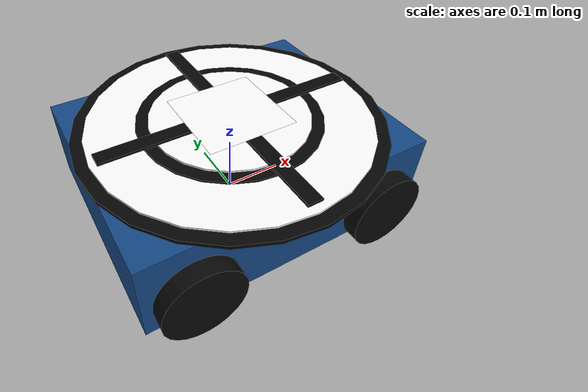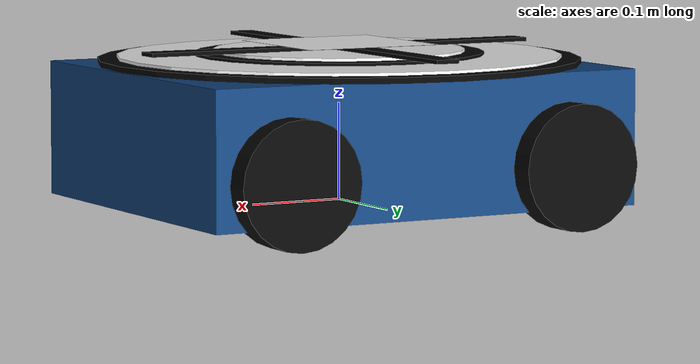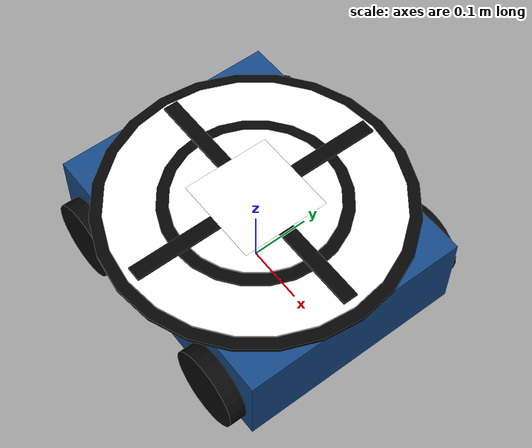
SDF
<?xml version="1.0"?>
<sdf version="1.8">
  <model name="d_task_car">
    <static>false</static>
    <self_collide>false</self_collide>
    <canonical_link>base_link</canonical_link>
    <link name="base_link">
      <inertial>
        <mass>5.0</mass>
        <inertia><ixx>0.08</ixx><iyy>0.10</iyy><izz>0.12</izz><ixy>0</ixy><ixz>0</ixz><iyz>0</iyz></inertia>
      </inertial>
      <collision name="body_collision">
        <pose>0 0 0.07 0 0 0</pose>
        <geometry><box><size>0.48 0.38 0.14</size></box></geometry>
        <surface><friction><ode><mu>0.8</mu><mu2>0.8</mu2></ode></friction></surface>
      </collision>
      <visual name="body_visual">
        <pose>0 0 0.07 0 0 0</pose>
        <geometry><box><size>0.48 0.38 0.14</size></box></geometry>
        <material><ambient>0.04 0.12 0.22 1</ambient><diffuse>0.08 0.28 0.52 1</diffuse></material>
      </visual>

      <!-- 50cm outer circle, 30cm inner circle and cross from the D-task drawing. -->
      <visual name="target_outer_black">
        <pose>0 0 0.145 0 0 0</pose><geometry><cylinder><radius>0.25</radius><length>0.006</length></cylinder></geometry>
        <material><ambient>0.02 0.02 0.02 1</ambient><diffuse>0.02 0.02 0.02 1</diffuse></material>
      </visual>
      <visual name="target_outer_white">
        <pose>0 0 0.149 0 0 0</pose><geometry><cylinder><radius>0.23</radius><length>0.004</length></cylinder></geometry>
        <material><ambient>1 1 1 1</ambient><diffuse>1 1 1 1</diffuse></material>
      </visual>
      <visual name="target_inner_black">
        <pose>0 0 0.152 0 0 0</pose><geometry><cylinder><radius>0.15</radius><length>0.004</length></cylinder></geometry>
        <material><ambient>0.02 0.02 0.02 1</ambient><diffuse>0.02 0.02 0.02 1</diffuse></material>
      </visual>
      <visual name="target_inner_white">
        <pose>0 0 0.155 0 0 0</pose><geometry><cylinder><radius>0.13</radius><length>0.004</length></cylinder></geometry>
        <material><ambient>1 1 1 1</ambient><diffuse>1 1 1 1</diffuse></material>
      </visual>
      <visual name="target_cross_x">
        <pose>0 0 0.159 0 0 0</pose><geometry><box><size>0.44 0.025 0.004</size></box></geometry>
        <material><ambient>0.02 0.02 0.02 1</ambient><diffuse>0.02 0.02 0.02 1</diffuse></material>
      </visual>
      <visual name="target_cross_y">
        <pose>0 0 0.159 0 0 0</pose><geometry><box><size>0.025 0.44 0.004</size></box></geometry>
        <material><ambient>0.02 0.02 0.02 1</ambient><diffuse>0.02 0.02 0.02 1</diffuse></material>
      </visual>

      <!-- Exactly 15x15cm tag36h11 ID 0, centered over the target cross. -->
      <visual name="center_apriltag_id_0">
        <pose>0 0 0.163 0 0 0</pose>
        <geometry><plane><normal>0 0 1</normal><size>0.15 0.15</size></plane></geometry>
        <material>
          <ambient>1 1 1 1</ambient><diffuse>1 1 1 1</diffuse>
          <pbr><metal><albedo_map>model://apriltag_marker/materials/textures/tag36h11_0.png</albedo_map><metalness>0</metalness><roughness>1</roughness></metal></pbr>
        </material>
      </visual>

      <visual name="wheel_fl"><pose>0.16 0.20 0.045 1.5708 0 0</pose><geometry><cylinder><radius>0.065</radius><length>0.035</length></cylinder></geometry><material><diffuse>0.03 0.03 0.03 1</diffuse></material></visual>
      <visual name="wheel_fr"><pose>0.16 -0.20 0.045 1.5708 0 0</pose><geometry><cylinder><radius>0.065</radius><length>0.035</length></cylinder></geometry><material><diffuse>0.03 0.03 0.03 1</diffuse></material></visual>
      <visual name="wheel_rl"><pose>-0.16 0.20 0.045 1.5708 0 0</pose><geometry><cylinder><radius>0.065</radius><length>0.035</length></cylinder></geometry><material><diffuse>0.03 0.03 0.03 1</diffuse></material></visual>
      <visual name="wheel_rr"><pose>-0.16 -0.20 0.045 1.5708 0 0</pose><geometry><cylinder><radius>0.065</radius><length>0.035</length></cylinder></geometry><material><diffuse>0.03 0.03 0.03 1</diffuse></material></visual>
    </link>
    <plugin filename="ignition-gazebo-velocity-control-system" name="ignition::gazebo::systems::VelocityControl">
      <topic>/d_task_car/cmd_vel</topic>
    </plugin>
    <plugin filename="ignition-gazebo-odometry-publisher-system" name="ignition::gazebo::systems::OdometryPublisher">
      <odom_topic>/simulation/car/odom</odom_topic>
      <odom_frame>world</odom_frame><robot_base_frame>d_task_car</robot_base_frame><dimensions>3</dimensions><odom_publish_frequency>30</odom_publish_frequency>
    </plugin>
  </model>
</sdf>
